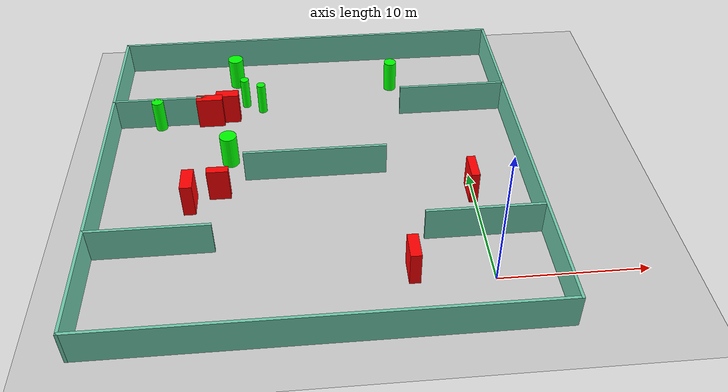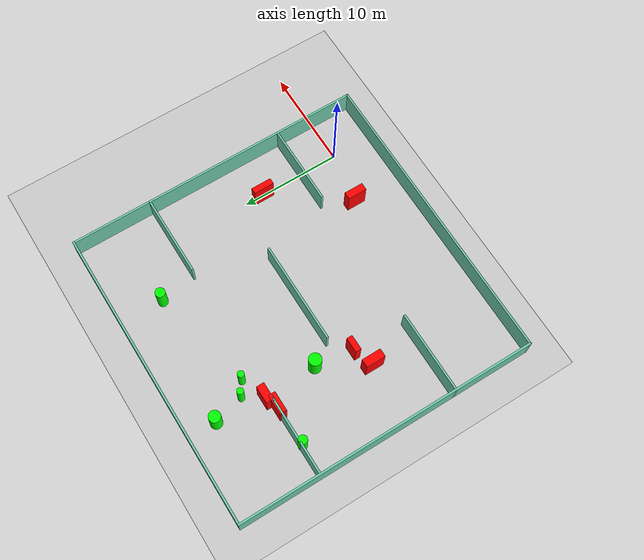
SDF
<sdf version="1.7">
 <world name="default">
  <light name="sun" type="directional">
   <pose>0 0 10 0 -0 0</pose>
   <diffuse>0.8 0.8 0.8 1</diffuse>
   <specular>0.2 0.2 0.2 1</specular>
   <attenuation>
    <range>1000</range>
    <constant>0.9</constant>
    <linear>0.01</linear>
    <quadratic>0.001</quadratic>
   </attenuation>
   <direction>-0.5 0.1 -0.9</direction>
   <spot><inner_angle>0</inner_angle><outer_angle>0</outer_angle><falloff>0</falloff></spot>
  </light>
  <model name="ground_plane">
   <static>1</static>
   <link name="link">
    <collision name="collision">
     <geometry><plane><normal>0 0 1</normal><size>100 100</size></plane></geometry>
     <surface>
      <contact><collide_bitmask>65535</collide_bitmask></contact>
      <friction><ode><mu>100</mu><mu2>50</mu2></ode></friction>
     </surface>
    </collision>
    <visual name="visual">
     <cast_shadows>0</cast_shadows>
     <geometry><plane><normal>0 0 1</normal><size>100 100</size></plane></geometry>
     <material>
      <script><uri>file://media/materials/scripts/gazebo.material</uri><name>Gazebo/Grey</name></script>
     </material>
    </visual>
   </link>
  </model>
  <gravity>0 0 -9.8</gravity>
  <magnetic_field>6e-06 2.3e-05 -4.2e-05</magnetic_field>
  <atmosphere type="adiabatic"/>
  <physics type="ode">
   <max_step_size>0.001</max_step_size>
   <real_time_factor>1</real_time_factor>
   <real_time_update_rate>1000</real_time_update_rate>
  </physics>
  <scene><ambient>0.4 0.4 0.4 1</ambient><background>0.7 0.7 0.7 1</background><shadows>1</shadows></scene>
  <spherical_coordinates>
   <surface_model>EARTH_WGS84</surface_model>
   <latitude_deg>0</latitude_deg>
   <longitude_deg>0</longitude_deg>
   <elevation>0</elevation>
   <heading_deg>0</heading_deg>
  </spherical_coordinates>
  <model name="my_base_walls">
   <link name="Wall_10">
    <collision name="Wall_10_Collision">
     <geometry><box><size>8.2 0.2 2.5</size></box></geometry>
     <pose>0 0 1.25 0 -0 0</pose>
    </collision>
    <visual name="Wall_10_Visual">
     <pose>0 0 1.25 0 -0 0</pose>
     <geometry><box><size>8.2 0.2 2.5</size></box></geometry>
     <material>
      <script><uri>file://media/materials/scripts/gazebo.material</uri><name>Gazebo/Grey</name></script>
      <ambient>0.435294 0.796078 0.67451 1</ambient>
     </material>
     <meta><layer>0</layer></meta>
    </visual>
    <pose>-11 -7 0 0 -0 0</pose>
   </link>
   <link name="Wall_12">
    <collision name="Wall_12_Collision">
     <geometry><box><size>8.2 0.2 2.5</size></box></geometry>
     <pose>0 0 1.25 0 -0 0</pose>
    </collision>
    <visual name="Wall_12_Visual">
     <pose>0 0 1.25 0 -0 0</pose>
     <geometry><box><size>8.2 0.2 2.5</size></box></geometry>
     <material>
      <script><uri>file://media/materials/scripts/gazebo.material</uri><name>Gazebo/Grey</name></script>
      <ambient>0.435294 0.796078 0.67451 1</ambient>
     </material>
     <meta><layer>0</layer></meta>
    </visual>
    <pose>-11 7 0 0 -0 0</pose>
   </link>
   <link name="Wall_14">
    <collision name="Wall_14_Collision">
     <geometry><box><size>8.2 0.2 2.5</size></box></geometry>
     <pose>0 0 1.25 0 -0 0</pose>
    </collision>
    <visual name="Wall_14_Visual">
     <pose>0 0 1.25 0 -0 0</pose>
     <geometry><box><size>8.2 0.2 2.5</size></box></geometry>
     <material>
      <script><uri>file://media/materials/scripts/gazebo.material</uri><name>Gazebo/Grey</name></script>
      <ambient>0.435294 0.796078 0.67451 1</ambient>
     </material>
     <meta><layer>0</layer></meta>
    </visual>
    <pose>11 7 0 0 -0 3.14159</pose>
   </link>
   <link name="Wall_16">
    <collision name="Wall_16_Collision">
     <geometry><box><size>10.2 0.2 2.5</size></box></geometry>
     <pose>0 0 1.25 0 -0 0</pose>
    </collision>
    <visual name="Wall_16_Visual">
     <pose>0 0 1.25 0 -0 0</pose>
     <geometry><box><size>10.2 0.2 2.5</size></box></geometry>
     <material>
      <script><uri>file://media/materials/scripts/gazebo.material</uri><name>Gazebo/Grey</name></script>
      <ambient>0.435294 0.796078 0.67451 1</ambient>
     </material>
     <meta><layer>0</layer></meta>
    </visual>
    <pose>0 0 0 0 -0 3.14159</pose>
   </link>
   <link name="Wall_2">
    <collision name="Wall_2_Collision">
     <geometry><box><size>30.2 0.2 2.5</size></box></geometry>
     <pose>0 0 1.25 0 -0 0</pose>
    </collision>
    <visual name="Wall_2_Visual">
     <pose>0 0 1.25 0 -0 0</pose>
     <geometry><box><size>30.2 0.2 2.5</size></box></geometry>
     <material>
      <script><uri>file://media/materials/scripts/gazebo.material</uri><name>Gazebo/Grey</name></script>
      <ambient>0.435294 0.796078 0.67451 1</ambient>
     </material>
     <meta><layer>0</layer></meta>
    </visual>
    <pose>0 -15 0 0 -0 3.14159</pose>
   </link>
   <link name="Wall_3">
    <collision name="Wall_3_Collision">
     <geometry><box><size>30.2 0.2 2.5</size></box></geometry>
     <pose>0 0 1.25 0 -0 0</pose>
    </collision>
    <visual name="Wall_3_Visual">
     <pose>0 0 1.25 0 -0 0</pose>
     <geometry><box><size>30.2 0.2 2.5</size></box></geometry>
     <material>
      <script><uri>file://media/materials/scripts/gazebo.material</uri><name>Gazebo/Grey</name></script>
      <ambient>0.435294 0.796078 0.67451 1</ambient>
     </material>
     <meta><layer>0</layer></meta>
    </visual>
    <pose>-15 0 0 0 -0 1.5708</pose>
   </link>
   <link name="Wall_4">
    <collision name="Wall_4_Collision">
     <geometry><box><size>30.2 0.2 2.5</size></box></geometry>
     <pose>0 0 1.25 0 -0 0</pose>
    </collision>
    <visual name="Wall_4_Visual">
     <pose>0 0 1.25 0 -0 0</pose>
     <geometry><box><size>30.2 0.2 2.5</size></box></geometry>
     <material>
      <script><uri>file://media/materials/scripts/gazebo.material</uri><name>Gazebo/Grey</name></script>
      <ambient>0.435294 0.796078 0.67451 1</ambient>
     </material>
     <meta><layer>0</layer></meta>
    </visual>
    <pose>0 15 0 0 -0 0</pose>
   </link>
   <link name="Wall_6">
    <collision name="Wall_6_Collision">
     <geometry><box><size>30.2 0.2 2.5</size></box></geometry>
     <pose>0 0 1.25 0 -0 0</pose>
    </collision>
    <visual name="Wall_6_Visual">
     <pose>0 0 1.25 0 -0 0</pose>
     <geometry><box><size>30.2 0.2 2.5</size></box></geometry>
     <material>
      <script><uri>file://media/materials/scripts/gazebo.material</uri><name>Gazebo/Grey</name></script>
      <ambient>0.435294 0.796078 0.67451 1</ambient>
     </material>
     <meta><layer>0</layer></meta>
    </visual>
    <pose>15 0 0 0 -0 1.5708</pose>
   </link>
   <link name="Wall_8">
    <collision name="Wall_8_Collision">
     <geometry><box><size>8.2 0.2 2.5</size></box></geometry>
     <pose>0 0 1.25 0 -0 0</pose>
    </collision>
    <visual name="Wall_8_Visual">
     <pose>0 0 1.25 0 -0 0</pose>
     <geometry><box><size>8.2 0.2 2.5</size></box></geometry>
     <material>
      <script><uri>file://media/materials/scripts/gazebo.material</uri><name>Gazebo/Grey</name></script>
      <ambient>0.435294 0.796078 0.67451 1</ambient>
     </material>
     <meta><layer>0</layer></meta>
    </visual>
    <pose>11 -7 0 0 -0 3.14159</pose>
   </link>
   <static>1</static>
   <pose>-11 11 0 0 -0 0</pose>
  </model>
  <model name="cylinder1">
   <static>1</static>
   <link name="link">
    <inertial>
     <mass>1</mass>
     <inertia><ixx>0.5</ixx><ixy>0</ixy><ixz>0</ixz><iyy>0.5</iyy><iyz>0</iyz><izz>1</izz></inertia>
    </inertial>
    <collision name="collision">
     <geometry><cylinder><radius>0.329043703075205</radius><length>2.5</length></cylinder></geometry>
    </collision>
    <visual name="visual">
     <geometry><cylinder><radius>0.329043703075205</radius><length>2.5</length></cylinder></geometry>
     <material>
      <ambient>0 1 0 1</ambient>
      <diffuse>0 1 0 1</diffuse>
      <specular>0.1 0.1 0.1 1</specular>
      <emissive>0 0 0 0</emissive>
     </material>
    </visual>
   </link>
   <pose>-16.212087646017288 20.105639490303798 1.25 0 0 0</pose>
  </model>
  <model name="cylinder2">
   <static>1</static>
   <link name="link">
    <inertial>
     <mass>1</mass>
     <inertia><ixx>0.5</ixx><ixy>0</ixy><ixz>0</ixz><iyy>0.5</iyy><iyz>0</iyz><izz>1</izz></inertia>
    </inertial>
    <collision name="collision">
     <geometry><cylinder><radius>0.4849360310560641</radius><length>2.5</length></cylinder></geometry>
    </collision>
    <visual name="visual">
     <geometry><cylinder><radius>0.4849360310560641</radius><length>2.5</length></cylinder></geometry>
     <material>
      <ambient>0 1 0 1</ambient>
      <diffuse>0 1 0 1</diffuse>
      <specular>0.1 0.1 0.1 1</specular>
      <emissive>0 0 0 0</emissive>
     </material>
    </visual>
   </link>
   <pose>-4.488783494089054 21.59779655984387 1.25 0 0 0</pose>
  </model>
  <model name="cylinder3">
   <static>1</static>
   <link name="link">
    <inertial>
     <mass>1</mass>
     <inertia><ixx>0.5</ixx><ixy>0</ixy><ixz>0</ixz><iyy>0.5</iyy><iyz>0</iyz><izz>1</izz></inertia>
    </inertial>
    <collision name="collision">
     <geometry><cylinder><radius>0.6212567866299449</radius><length>2.5</length></cylinder></geometry>
    </collision>
    <visual name="visual">
     <geometry><cylinder><radius>0.6212567866299449</radius><length>2.5</length></cylinder></geometry>
     <material>
      <ambient>0 1 0 1</ambient>
      <diffuse>0 1 0 1</diffuse>
      <specular>0.1 0.1 0.1 1</specular>
      <emissive>0 0 0 0</emissive>
     </material>
    </visual>
   </link>
   <pose>-17.220194083559385 13.016155051289768 1.25 0 0 0</pose>
  </model>
  <model name="cylinder4">
   <static>1</static>
   <link name="link">
    <inertial>
     <mass>1</mass>
     <inertia><ixx>0.5</ixx><ixy>0</ixy><ixz>0</ixz><iyy>0.5</iyy><iyz>0</iyz><izz>1</izz></inertia>
    </inertial>
    <collision name="collision">
     <geometry><cylinder><radius>0.5797805811999048</radius><length>2.5</length></cylinder></geometry>
    </collision>
    <visual name="visual">
     <geometry><cylinder><radius>0.5797805811999048</radius><length>2.5</length></cylinder></geometry>
     <material>
      <ambient>0 1 0 1</ambient>
      <diffuse>0 1 0 1</diffuse>
      <specular>0.1 0.1 0.1 1</specular>
      <emissive>0 0 0 0</emissive>
     </material>
    </visual>
   </link>
   <pose>-17.00243729515388 23.132965023538564 1.25 0 0 0</pose>
  </model>
  <model name="cylinder5">
   <static>1</static>
   <link name="link">
    <inertial>
     <mass>1</mass>
     <inertia><ixx>0.5</ixx><ixy>0</ixy><ixz>0</ixz><iyy>0.5</iyy><iyz>0</iyz><izz>1</izz></inertia>
    </inertial>
    <collision name="collision">
     <geometry><cylinder><radius>0.328865680590877</radius><length>2.5</length></cylinder></geometry>
    </collision>
    <visual name="visual">
     <geometry><cylinder><radius>0.328865680590877</radius><length>2.5</length></cylinder></geometry>
     <material>
      <ambient>0 1 0 1</ambient>
      <diffuse>0 1 0 1</diffuse>
      <specular>0.1 0.1 0.1 1</specular>
      <emissive>0 0 0 0</emissive>
     </material>
    </visual>
   </link>
   <pose>-14.91013926100155 19.277854696491573 1.25 0 0 0</pose>
  </model>
  <model name="cylinder6">
   <static>1</static>
   <link name="link">
    <inertial>
     <mass>1</mass>
     <inertia><ixx>0.5</ixx><ixy>0</ixy><ixz>0</ixz><iyy>0.5</iyy><iyz>0</iyz><izz>1</izz></inertia>
    </inertial>
    <collision name="collision">
     <geometry><cylinder><radius>0.4358985951717995</radius><length>2.5</length></cylinder></geometry>
    </collision>
    <visual name="visual">
     <geometry><cylinder><radius>0.4358985951717995</radius><length>2.5</length></cylinder></geometry>
     <material>
      <ambient>0 1 0 1</ambient>
      <diffuse>0 1 0 1</diffuse>
      <specular>0.1 0.1 0.1 1</specular>
      <emissive>0 0 0 0</emissive>
     </material>
    </visual>
   </link>
   <pose>-22.73614385411583 17.718642957846253 1.25 0 0 0</pose>
  </model>
  <model name="box1">
   <static>1</static>
   <link name="link">
    <inertial>
     <mass>1</mass>
     <inertia><ixx>0.083</ixx><ixy>0</ixy><ixz>0</ixz><iyy>0.083</iyy><iyz>0</iyz><izz>0.083</izz></inertia>
    </inertial>
    <collision name="collision">
     <geometry><box><size>1.5108019973107512 0.575910596082799 2.5</size></box></geometry>
    </collision>
    <visual name="visual">
     <geometry><box><size>1.5108019973107512 0.575910596082799 2.5</size></box></geometry>
     <material>
      <ambient>1 0 0 1</ambient>
      <diffuse>1 0 0 1</diffuse>
      <specular>0.1 0.1 0.1 1</specular>
      <emissive>0 0 0 0</emissive>
     </material>
    </visual>
    <sensor name="my_contact" type="contact">
     <contact><collision>box_collision</collision><topic>__default_topic__</topic></contact>
    </sensor>
   </link>
   <pose>-17.807241695620185 9.322876401063404 1.25 0 0 0</pose>
  </model>
  <model name="box2">
   <static>1</static>
   <link name="link">
    <inertial>
     <mass>1</mass>
     <inertia><ixx>0.083</ixx><ixy>0</ixy><ixz>0</ixz><iyy>0.083</iyy><iyz>0</iyz><izz>0.083</izz></inertia>
    </inertial>
    <collision name="collision">
     <geometry><box><size>0.7373414380655874 1.9141369845570335 2.5</size></box></geometry>
    </collision>
    <visual name="visual">
     <geometry><box><size>0.7373414380655874 1.9141369845570335 2.5</size></box></geometry>
     <material>
      <ambient>1 0 0 1</ambient>
      <diffuse>1 0 0 1</diffuse>
      <specular>0.1 0.1 0.1 1</specular>
      <emissive>0 0 0 0</emissive>
     </material>
    </visual>
    <sensor name="my_contact" type="contact">
     <contact><collision>box_collision</collision><topic>__default_topic__</topic></contact>
    </sensor>
   </link>
   <pose>-5.226163732449944 1.0122316233518918 1.25 0 0 0</pose>
  </model>
  <model name="box3">
   <static>1</static>
   <link name="link">
    <inertial>
     <mass>1</mass>
     <inertia><ixx>0.083</ixx><ixy>0</ixy><ixz>0</ixz><iyy>0.083</iyy><iyz>0</iyz><izz>0.083</izz></inertia>
    </inertial>
    <collision name="collision">
     <geometry><box><size>1.719008417443516 0.7702455658302947 2.5</size></box></geometry>
    </collision>
    <visual name="visual">
     <geometry><box><size>1.719008417443516 0.7702455658302947 2.5</size></box></geometry>
     <material>
      <ambient>1 0 0 1</ambient>
      <diffuse>1 0 0 1</diffuse>
      <specular>0.1 0.1 0.1 1</specular>
      <emissive>0 0 0 0</emissive>
     </material>
    </visual>
    <sensor name="my_contact" type="contact">
     <contact><collision>box_collision</collision><topic>__default_topic__</topic></contact>
    </sensor>
   </link>
   <pose>-17.494054558094007 18.3342247502977 1.25 0 0 0</pose>
  </model>
  <model name="box4">
   <static>1</static>
   <link name="link">
    <inertial>
     <mass>1</mass>
     <inertia><ixx>0.083</ixx><ixy>0</ixy><ixz>0</ixz><iyy>0.083</iyy><iyz>0</iyz><izz>0.083</izz></inertia>
    </inertial>
    <collision name="collision">
     <geometry><box><size>1.9679789323713148 0.707580812734421 2.5</size></box></geometry>
    </collision>
    <visual name="visual">
     <geometry><box><size>1.9679789323713148 0.707580812734421 2.5</size></box></geometry>
     <material>
      <ambient>1 0 0 1</ambient>
      <diffuse>1 0 0 1</diffuse>
      <specular>0.1 0.1 0.1 1</specular>
      <emissive>0 0 0 0</emissive>
     </material>
    </visual>
    <sensor name="my_contact" type="contact">
     <contact><collision>box_collision</collision><topic>__default_topic__</topic></contact>
    </sensor>
   </link>
   <pose>-18.826322030540886 17.886958036879545 1.25 0 0 0</pose>
  </model>
  <model name="box5">
   <static>1</static>
   <link name="link">
    <inertial>
     <mass>1</mass>
     <inertia><ixx>0.083</ixx><ixy>0</ixy><ixz>0</ixz><iyy>0.083</iyy><iyz>0</iyz><izz>0.083</izz></inertia>
    </inertial>
    <collision name="collision">
     <geometry><box><size>0.8344910731833466 1.9262744907031317 2.5</size></box></geometry>
    </collision>
    <visual name="visual">
     <geometry><box><size>0.8344910731833466 1.9262744907031317 2.5</size></box></geometry>
     <material>
      <ambient>1 0 0 1</ambient>
      <diffuse>1 0 0 1</diffuse>
      <specular>0.1 0.1 0.1 1</specular>
      <emissive>0 0 0 0</emissive>
     </material>
    </visual>
    <sensor name="my_contact" type="contact">
     <contact><collision>box_collision</collision><topic>__default_topic__</topic></contact>
    </sensor>
   </link>
   <pose>-19.830741016308377 8.557860274980618 1.25 0 0 0</pose>
  </model>
  <model name="box6">
   <static>1</static>
   <link name="link">
    <inertial>
     <mass>1</mass>
     <inertia><ixx>0.083</ixx><ixy>0</ixy><ixz>0</ixz><iyy>0.083</iyy><iyz>0</iyz><izz>0.083</izz></inertia>
    </inertial>
    <collision name="collision">
     <geometry><box><size>0.596533067775456 2.0384416341651037 2.5</size></box></geometry>
    </collision>
    <visual name="visual">
     <geometry><box><size>0.596533067775456 2.0384416341651037 2.5</size></box></geometry>
     <material>
      <ambient>1 0 0 1</ambient>
      <diffuse>1 0 0 1</diffuse>
      <specular>0.1 0.1 0.1 1</specular>
      <emissive>0 0 0 0</emissive>
     </material>
    </visual>
    <sensor name="my_contact" type="contact">
     <contact><collision>box_collision</collision><topic>__default_topic__</topic></contact>
    </sensor>
   </link>
   <pose>-0.15909733662165237 8.181508751689815 1.25 0 0 0</pose>
  </model>
 </world>
</sdf>
